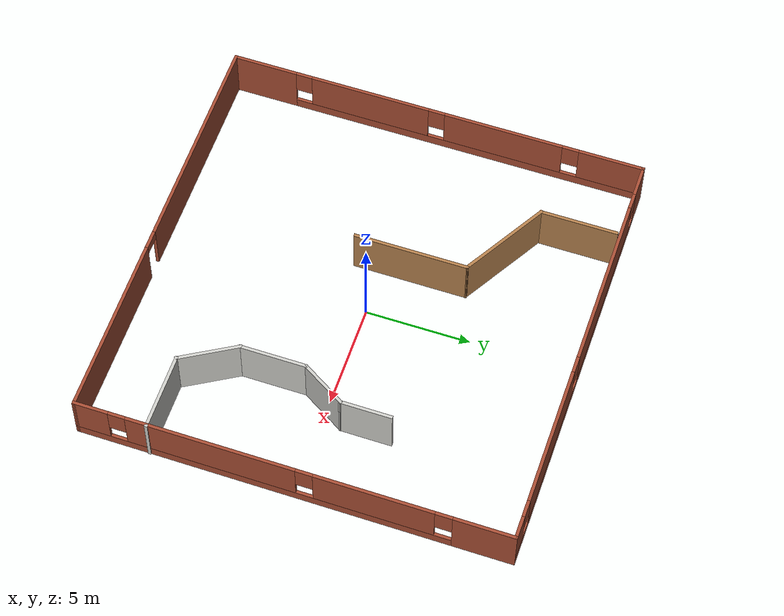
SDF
<?xml version='1.0'?>
<sdf version='1.7'>
  <model name='rtab_enclosure'>
    <pose>-0.044574 0.013919 0 0 -0 0</pose>
    <link name='Wall_0'>
      <pose>-0.018426 10.1201 0 0 -0 0</pose>
      <visual name='Wall_0_Visual_0'>
        <pose>-9.33159 0 1.25 0 -0 0</pose>
        <geometry>
          <box>
            <size>1.58683 0.15 2.5</size>
          </box>
        </geometry>
        <material>
          <script>
            <uri>file://media/materials/scripts/gazebo.material</uri>
            <name>Gazebo/Bricks</name>
          </script>
          <ambient>1 1 1 1</ambient>
        </material>
        <meta>
          <layer>0</layer>
        </meta>
      </visual>
      <collision name='Wall_0_Collision_0'>
        <geometry>
          <box>
            <size>1.58683 0.15 2.5</size>
          </box>
        </geometry>
        <pose>-9.33159 0 1.25 0 -0 0</pose>
      </collision>
      <visual name='Wall_0_Visual_1'>
        <pose>0.793415 0 0.25 0 -0 0</pose>
        <geometry>
          <box>
            <size>18.6632 0.15 0.5</size>
          </box>
        </geometry>
        <material>
          <script>
            <uri>file://media/materials/scripts/gazebo.material</uri>
            <name>Gazebo/Bricks</name>
          </script>
          <ambient>1 1 1 1</ambient>
        </material>
        <meta>
          <layer>0</layer>
        </meta>
      </visual>
      <collision name='Wall_0_Collision_1'>
        <geometry>
          <box>
            <size>18.6632 0.15 0.5</size>
          </box>
        </geometry>
        <pose>0.793415 0 0.25 0 -0 0</pose>
      </collision>
      <visual name='Wall_0_Visual_2'>
        <pose>-3.53097 0 1.5 0 -0 0</pose>
        <geometry>
          <box>
            <size>8.41439 0.15 2</size>
          </box>
        </geometry>
        <material>
          <script>
            <uri>file://media/materials/scripts/gazebo.material</uri>
            <name>Gazebo/Bricks</name>
          </script>
          <ambient>1 1 1 1</ambient>
        </material>
        <meta>
          <layer>0</layer>
        </meta>
      </visual>
      <collision name='Wall_0_Collision_2'>
        <geometry>
          <box>
            <size>8.41439 0.15 2</size>
          </box>
        </geometry>
        <pose>-3.53097 0 1.5 0 -0 0</pose>
      </collision>
      <visual name='Wall_0_Visual_3'>
        <pose>4.83505 0 1.5 0 -0 0</pose>
        <geometry>
          <box>
            <size>6.71766 0.15 2</size>
          </box>
        </geometry>
        <material>
          <script>
            <uri>file://media/materials/scripts/gazebo.material</uri>
            <name>Gazebo/Bricks</name>
          </script>
          <ambient>1 1 1 1</ambient>
        </material>
        <meta>
          <layer>0</layer>
        </meta>
      </visual>
      <collision name='Wall_0_Collision_3'>
        <geometry>
          <box>
            <size>6.71766 0.15 2</size>
          </box>
        </geometry>
        <pose>4.83505 0 1.5 0 -0 0</pose>
      </collision>
      <visual name='Wall_0_Visual_4'>
        <pose>9.55944 0 1.5 0 -0 0</pose>
        <geometry>
          <box>
            <size>1.13112 0.15 2</size>
          </box>
        </geometry>
        <material>
          <script>
            <uri>file://media/materials/scripts/gazebo.material</uri>
            <name>Gazebo/Bricks</name>
          </script>
          <ambient>1 1 1 1</ambient>
        </material>
        <meta>
          <layer>0</layer>
        </meta>
      </visual>
      <collision name='Wall_0_Collision_4'>
        <geometry>
          <box>
            <size>1.13112 0.15 2</size>
          </box>
        </geometry>
        <pose>9.55944 0 1.5 0 -0 0</pose>
      </collision>
      <visual name='Wall_0_Visual_5'>
        <pose>-8.13817 0 1.9 0 -0 0</pose>
        <geometry>
          <box>
            <size>0.8 0.15 1.2</size>
          </box>
        </geometry>
        <material>
          <script>
            <uri>file://media/materials/scripts/gazebo.material</uri>
            <name>Gazebo/Bricks</name>
          </script>
          <ambient>1 1 1 1</ambient>
        </material>
        <meta>
          <layer>0</layer>
        </meta>
      </visual>
      <collision name='Wall_0_Collision_5'>
        <geometry>
          <box>
            <size>0.8 0.15 1.2</size>
          </box>
        </geometry>
        <pose>-8.13817 0 1.9 0 -0 0</pose>
      </collision>
      <visual name='Wall_0_Visual_6'>
        <pose>1.07622 0 1.9 0 -0 0</pose>
        <geometry>
          <box>
            <size>0.8 0.15 1.2</size>
          </box>
        </geometry>
        <material>
          <script>
            <uri>file://media/materials/scripts/gazebo.material</uri>
            <name>Gazebo/Bricks</name>
          </script>
          <ambient>1 1 1 1</ambient>
        </material>
        <meta>
          <layer>0</layer>
        </meta>
      </visual>
      <collision name='Wall_0_Collision_6'>
        <geometry>
          <box>
            <size>0.8 0.15 1.2</size>
          </box>
        </geometry>
        <pose>1.07622 0 1.9 0 -0 0</pose>
      </collision>
      <visual name='Wall_0_Visual_7'>
        <pose>8.59388 0 1.9 0 -0 0</pose>
        <geometry>
          <box>
            <size>0.8 0.15 1.2</size>
          </box>
        </geometry>
        <material>
          <script>
            <uri>file://media/materials/scripts/gazebo.material</uri>
            <name>Gazebo/Bricks</name>
          </script>
          <ambient>1 1 1 1</ambient>
        </material>
        <meta>
          <layer>0</layer>
        </meta>
      </visual>
      <collision name='Wall_0_Collision_7'>
        <geometry>
          <box>
            <size>0.8 0.15 1.2</size>
          </box>
        </geometry>
        <pose>8.59388 0 1.9 0 -0 0</pose>
      </collision>
    </link>
    <link name='Wall_10'>
      <collision name='Wall_10_Collision'>
        <geometry>
          <box>
            <size>3.75 0.15 2.5</size>
          </box>
        </geometry>
        <pose>0 0 1.25 0 -0 0</pose>
      </collision>
      <visual name='Wall_10_Visual'>
        <pose>0 0 1.25 0 -0 0</pose>
        <geometry>
          <box>
            <size>3.75 0.15 2.5</size>
          </box>
        </geometry>
        <material>
          <script>
            <uri>file://media/materials/scripts/gazebo.material</uri>
            <name>Gazebo/CeilingTiled</name>
          </script>
          <ambient>1 1 1 1</ambient>
        </material>
        <meta>
          <layer>0</layer>
        </meta>
      </visual>
      <pose>8.26857 -6.70092 0 0 -0 3.14159</pose>
    </link>
    <link name='Wall_11'>
      <collision name='Wall_11_Collision'>
        <geometry>
          <box>
            <size>3.02671 0.15 2.5</size>
          </box>
        </geometry>
        <pose>0 0 1.25 0 -0 0</pose>
      </collision>
      <visual name='Wall_11_Visual'>
        <pose>0 0 1.25 0 -0 0</pose>
        <geometry>
          <box>
            <size>3.02671 0.15 2.5</size>
          </box>
        </geometry>
        <material>
          <script>
            <uri>file://media/materials/scripts/gazebo.material</uri>
            <name>Gazebo/CeilingTiled</name>
          </script>
          <ambient>1 1 1 1</ambient>
        </material>
        <meta>
          <layer>0</layer>
        </meta>
      </visual>
      <pose>5.72957 -5.46692 0 0 -0 2.11038</pose>
    </link>
    <link name='Wall_12'>
      <collision name='Wall_12_Collision'>
        <geometry>
          <box>
            <size>3.25 0.15 2.5</size>
          </box>
        </geometry>
        <pose>0 0 1.25 0 -0 0</pose>
      </collision>
      <visual name='Wall_12_Visual'>
        <pose>0 0 1.25 0 -0 0</pose>
        <geometry>
          <box>
            <size>3.25 0.15 2.5</size>
          </box>
        </geometry>
        <material>
          <script>
            <uri>file://media/materials/scripts/gazebo.material</uri>
            <name>Gazebo/CeilingTiled</name>
          </script>
          <ambient>1 1 1 1</ambient>
        </material>
        <meta>
          <layer>0</layer>
        </meta>
      </visual>
      <pose>4.99007 -2.68292 0 0 -0 1.57112</pose>
    </link>
    <link name='Wall_13'>
      <collision name='Wall_13_Collision'>
        <geometry>
          <box>
            <size>2.52818 0.15 2.5</size>
          </box>
        </geometry>
        <pose>0 0 1.25 0 -0 0</pose>
      </collision>
      <visual name='Wall_13_Visual'>
        <pose>0 0 1.25 0 -0 0</pose>
        <geometry>
          <box>
            <size>2.52818 0.15 2.5</size>
          </box>
        </geometry>
        <material>
          <script>
            <uri>file://media/materials/scripts/gazebo.material</uri>
            <name>Gazebo/CeilingTiled</name>
          </script>
          <ambient>1 1 1 1</ambient>
        </material>
        <meta>
          <layer>0</layer>
        </meta>
      </visual>
      <pose>5.60407 -0.114919 0 0 -0 1.02771</pose>
    </link>
    <link name='Wall_14'>
      <collision name='Wall_14_Collision'>
        <geometry>
          <box>
            <size>2.5 0.15 2.5</size>
          </box>
        </geometry>
        <pose>0 0 1.25 0 -0 0</pose>
      </collision>
      <visual name='Wall_14_Visual'>
        <pose>0 0 1.25 0 -0 0</pose>
        <geometry>
          <box>
            <size>2.5 0.15 2.5</size>
          </box>
        </geometry>
        <material>
          <script>
            <uri>file://media/materials/scripts/gazebo.material</uri>
            <name>Gazebo/CeilingTiled</name>
          </script>
          <ambient>1 1 1 1</ambient>
        </material>
        <meta>
          <layer>0</layer>
        </meta>
      </visual>
      <pose>6.21857 2.07808 0 0 -0 1.5708</pose>
    </link>
    <link name='Wall_2'>
      <pose>10.0316 8.1e-05 0 0 -0 -1.5708</pose>
      <visual name='Wall_2_Visual_0'>
        <pose>-8.75484 0 1.25 0 -0 0</pose>
        <geometry>
          <box>
            <size>2.87991 0.15 2.5</size>
          </box>
        </geometry>
        <material>
          <script>
            <uri>file://media/materials/scripts/gazebo.material</uri>
            <name>Gazebo/Bricks</name>
          </script>
          <ambient>1 1 1 1</ambient>
        </material>
        <meta>
          <layer>0</layer>
        </meta>
      </visual>
      <collision name='Wall_2_Collision_0'>
        <geometry>
          <box>
            <size>2.87991 0.15 2.5</size>
          </box>
        </geometry>
        <pose>-8.75484 0 1.25 0 -0 0</pose>
      </collision>
      <visual name='Wall_2_Visual_1'>
        <pose>1.43996 0 0.25 0 -0 0</pose>
        <geometry>
          <box>
            <size>17.5097 0.15 0.5</size>
          </box>
        </geometry>
        <material>
          <script>
            <uri>file://media/materials/scripts/gazebo.material</uri>
            <name>Gazebo/Bricks</name>
          </script>
          <ambient>1 1 1 1</ambient>
        </material>
        <meta>
          <layer>0</layer>
        </meta>
      </visual>
      <collision name='Wall_2_Collision_1'>
        <geometry>
          <box>
            <size>17.5097 0.15 0.5</size>
          </box>
        </geometry>
        <pose>1.43996 0 0.25 0 -0 0</pose>
      </collision>
      <visual name='Wall_2_Visual_2'>
        <pose>-3.74599 0 1.5 0 -0 0</pose>
        <geometry>
          <box>
            <size>5.53779 0.15 2</size>
          </box>
        </geometry>
        <material>
          <script>
            <uri>file://media/materials/scripts/gazebo.material</uri>
            <name>Gazebo/Bricks</name>
          </script>
          <ambient>1 1 1 1</ambient>
        </material>
        <meta>
          <layer>0</layer>
        </meta>
      </visual>
      <collision name='Wall_2_Collision_2'>
        <geometry>
          <box>
            <size>5.53779 0.15 2</size>
          </box>
        </geometry>
        <pose>-3.74599 0 1.5 0 -0 0</pose>
      </collision>
      <visual name='Wall_2_Visual_3'>
        <pose>3.77146 0 1.5 0 -0 0</pose>
        <geometry>
          <box>
            <size>7.89711 0.15 2</size>
          </box>
        </geometry>
        <material>
          <script>
            <uri>file://media/materials/scripts/gazebo.material</uri>
            <name>Gazebo/Bricks</name>
          </script>
          <ambient>1 1 1 1</ambient>
        </material>
        <meta>
          <layer>0</layer>
        </meta>
      </visual>
      <collision name='Wall_2_Collision_3'>
        <geometry>
          <box>
            <size>7.89711 0.15 2</size>
          </box>
        </geometry>
        <pose>3.77146 0 1.5 0 -0 0</pose>
      </collision>
      <visual name='Wall_2_Visual_4'>
        <pose>9.3574 0 1.5 0 -0 0</pose>
        <geometry>
          <box>
            <size>1.67479 0.15 2</size>
          </box>
        </geometry>
        <material>
          <script>
            <uri>file://media/materials/scripts/gazebo.material</uri>
            <name>Gazebo/Bricks</name>
          </script>
          <ambient>1 1 1 1</ambient>
        </material>
        <meta>
          <layer>0</layer>
        </meta>
      </visual>
      <collision name='Wall_2_Collision_4'>
        <geometry>
          <box>
            <size>1.67479 0.15 2</size>
          </box>
        </geometry>
        <pose>9.3574 0 1.5 0 -0 0</pose>
      </collision>
      <visual name='Wall_2_Visual_5'>
        <pose>-6.91488 0 1.9 0 -0 0</pose>
        <geometry>
          <box>
            <size>0.8 0.15 1.2</size>
          </box>
        </geometry>
        <material>
          <script>
            <uri>file://media/materials/scripts/gazebo.material</uri>
            <name>Gazebo/Bricks</name>
          </script>
          <ambient>1 1 1 1</ambient>
        </material>
        <meta>
          <layer>0</layer>
        </meta>
      </visual>
      <collision name='Wall_2_Collision_5'>
        <geometry>
          <box>
            <size>0.8 0.15 1.2</size>
          </box>
        </geometry>
        <pose>-6.91488 0 1.9 0 -0 0</pose>
      </collision>
      <visual name='Wall_2_Visual_6'>
        <pose>-0.577099 0 1.9 0 -0 0</pose>
        <geometry>
          <box>
            <size>0.8 0.15 1.2</size>
          </box>
        </geometry>
        <material>
          <script>
            <uri>file://media/materials/scripts/gazebo.material</uri>
            <name>Gazebo/Bricks</name>
          </script>
          <ambient>1 1 1 1</ambient>
        </material>
        <meta>
          <layer>0</layer>
        </meta>
      </visual>
      <collision name='Wall_2_Collision_6'>
        <geometry>
          <box>
            <size>0.8 0.15 1.2</size>
          </box>
        </geometry>
        <pose>-0.577099 0 1.9 0 -0 0</pose>
      </collision>
      <visual name='Wall_2_Visual_7'>
        <pose>8.12001 0 1.9 0 -0 0</pose>
        <geometry>
          <box>
            <size>0.8 0.15 1.2</size>
          </box>
        </geometry>
        <material>
          <script>
            <uri>file://media/materials/scripts/gazebo.material</uri>
            <name>Gazebo/Bricks</name>
          </script>
          <ambient>1 1 1 1</ambient>
        </material>
        <meta>
          <layer>0</layer>
        </meta>
      </visual>
      <collision name='Wall_2_Collision_7'>
        <geometry>
          <box>
            <size>0.8 0.15 1.2</size>
          </box>
        </geometry>
        <pose>8.12001 0 1.9 0 -0 0</pose>
      </collision>
    </link>
    <link name='Wall_3'>
      <pose>-0.018426 -10.0964 0 0 -0 3.13925</pose>
      <visual name='Wall_3_Visual_0'>
        <pose>-5.80454 0 1.25 0 -0 0</pose>
        <geometry>
          <box>
            <size>8.64092 0.15 2.5</size>
          </box>
        </geometry>
        <material>
          <script>
            <uri>file://media/materials/scripts/gazebo.material</uri>
            <name>Gazebo/Bricks</name>
          </script>
          <ambient>1 1 1 1</ambient>
        </material>
        <meta>
          <layer>0</layer>
        </meta>
      </visual>
      <collision name='Wall_3_Collision_0'>
        <geometry>
          <box>
            <size>8.64092 0.15 2.5</size>
          </box>
        </geometry>
        <pose>-5.80454 0 1.25 0 -0 0</pose>
      </collision>
      <visual name='Wall_3_Visual_1'>
        <pose>4.77046 0 1.25 0 -0 0</pose>
        <geometry>
          <box>
            <size>10.7091 0.15 2.5</size>
          </box>
        </geometry>
        <material>
          <script>
            <uri>file://media/materials/scripts/gazebo.material</uri>
            <name>Gazebo/Bricks</name>
          </script>
          <ambient>1 1 1 1</ambient>
        </material>
        <meta>
          <layer>0</layer>
        </meta>
      </visual>
      <collision name='Wall_3_Collision_1'>
        <geometry>
          <box>
            <size>10.7091 0.15 2.5</size>
          </box>
        </geometry>
        <pose>4.77046 0 1.25 0 -0 0</pose>
      </collision>
      <visual name='Wall_3_Visual_2'>
        <pose>-1.03408 0 2.25 0 -0 0</pose>
        <geometry>
          <box>
            <size>0.9 0.15 0.5</size>
          </box>
        </geometry>
        <material>
          <script>
            <uri>file://media/materials/scripts/gazebo.material</uri>
            <name>Gazebo/Bricks</name>
          </script>
          <ambient>1 1 1 1</ambient>
        </material>
        <meta>
          <layer>0</layer>
        </meta>
      </visual>
      <collision name='Wall_3_Collision_2'>
        <geometry>
          <box>
            <size>0.9 0.15 0.5</size>
          </box>
        </geometry>
        <pose>-1.03408 0 2.25 0 -0 0</pose>
      </collision>
    </link>
    <link name='Wall_4'>
      <pose>-10.0684 0.023581 0 0 -0 1.5708</pose>
      <visual name='Wall_4_Visual_0'>
        <pose>-8.59435 0 1.25 0 -0 0</pose>
        <geometry>
          <box>
            <size>3.15432 0.15 2.5</size>
          </box>
        </geometry>
        <material>
          <script>
            <uri>file://media/materials/scripts/gazebo.material</uri>
            <name>Gazebo/Bricks</name>
          </script>
          <ambient>1 1 1 1</ambient>
        </material>
        <meta>
          <layer>0</layer>
        </meta>
      </visual>
      <collision name='Wall_4_Collision_0'>
        <geometry>
          <box>
            <size>3.15432 0.15 2.5</size>
          </box>
        </geometry>
        <pose>-8.59435 0 1.25 0 -0 0</pose>
      </collision>
      <visual name='Wall_4_Visual_1'>
        <pose>1.57716 0 0.25 0 -0 0</pose>
        <geometry>
          <box>
            <size>17.1887 0.15 0.5</size>
          </box>
        </geometry>
        <material>
          <script>
            <uri>file://media/materials/scripts/gazebo.material</uri>
            <name>Gazebo/Bricks</name>
          </script>
          <ambient>1 1 1 1</ambient>
        </material>
        <meta>
          <layer>0</layer>
        </meta>
      </visual>
      <collision name='Wall_4_Collision_1'>
        <geometry>
          <box>
            <size>17.1887 0.15 0.5</size>
          </box>
        </geometry>
        <pose>1.57716 0 0.25 0 -0 0</pose>
      </collision>
      <visual name='Wall_4_Visual_2'>
        <pose>-3.30004 0 1.5 0 -0 0</pose>
        <geometry>
          <box>
            <size>5.83431 0.15 2</size>
          </box>
        </geometry>
        <material>
          <script>
            <uri>file://media/materials/scripts/gazebo.material</uri>
            <name>Gazebo/Bricks</name>
          </script>
          <ambient>1 1 1 1</ambient>
        </material>
        <meta>
          <layer>0</layer>
        </meta>
      </visual>
      <collision name='Wall_4_Collision_2'>
        <geometry>
          <box>
            <size>5.83431 0.15 2</size>
          </box>
        </geometry>
        <pose>-3.30004 0 1.5 0 -0 0</pose>
      </collision>
      <visual name='Wall_4_Visual_3'>
        <pose>3.30752 0 1.5 0 -0 0</pose>
        <geometry>
          <box>
            <size>5.78081 0.15 2</size>
          </box>
        </geometry>
        <material>
          <script>
            <uri>file://media/materials/scripts/gazebo.material</uri>
            <name>Gazebo/Bricks</name>
          </script>
          <ambient>1 1 1 1</ambient>
        </material>
        <meta>
          <layer>0</layer>
        </meta>
      </visual>
      <collision name='Wall_4_Collision_3'>
        <geometry>
          <box>
            <size>5.78081 0.15 2</size>
          </box>
        </geometry>
        <pose>3.30752 0 1.5 0 -0 0</pose>
      </collision>
      <visual name='Wall_4_Visual_4'>
        <pose>8.58472 0 1.5 0 -0 0</pose>
        <geometry>
          <box>
            <size>3.17359 0.15 2</size>
          </box>
        </geometry>
        <material>
          <script>
            <uri>file://media/materials/scripts/gazebo.material</uri>
            <name>Gazebo/Bricks</name>
          </script>
          <ambient>1 1 1 1</ambient>
        </material>
        <meta>
          <layer>0</layer>
        </meta>
      </visual>
      <collision name='Wall_4_Collision_4'>
        <geometry>
          <box>
            <size>3.17359 0.15 2</size>
          </box>
        </geometry>
        <pose>8.58472 0 1.5 0 -0 0</pose>
      </collision>
      <visual name='Wall_4_Visual_5'>
        <pose>-6.61719 0 1.9 0 -0 0</pose>
        <geometry>
          <box>
            <size>0.8 0.15 1.2</size>
          </box>
        </geometry>
        <material>
          <script>
            <uri>file://media/materials/scripts/gazebo.material</uri>
            <name>Gazebo/Bricks</name>
          </script>
          <ambient>1 1 1 1</ambient>
        </material>
        <meta>
          <layer>0</layer>
        </meta>
      </visual>
      <collision name='Wall_4_Collision_5'>
        <geometry>
          <box>
            <size>0.8 0.15 1.2</size>
          </box>
        </geometry>
        <pose>-6.61719 0 1.9 0 -0 0</pose>
      </collision>
      <visual name='Wall_4_Visual_6'>
        <pose>0.017117 0 1.9 0 -0 0</pose>
        <geometry>
          <box>
            <size>0.8 0.15 1.2</size>
          </box>
        </geometry>
        <material>
          <script>
            <uri>file://media/materials/scripts/gazebo.material</uri>
            <name>Gazebo/Bricks</name>
          </script>
          <ambient>1 1 1 1</ambient>
        </material>
        <meta>
          <layer>0</layer>
        </meta>
      </visual>
      <collision name='Wall_4_Collision_6'>
        <geometry>
          <box>
            <size>0.8 0.15 1.2</size>
          </box>
        </geometry>
        <pose>0.017117 0 1.9 0 -0 0</pose>
      </collision>
      <visual name='Wall_4_Visual_7'>
        <pose>6.59793 0 1.9 0 -0 0</pose>
        <geometry>
          <box>
            <size>0.8 0.15 1.2</size>
          </box>
        </geometry>
        <material>
          <script>
            <uri>file://media/materials/scripts/gazebo.material</uri>
            <name>Gazebo/Bricks</name>
          </script>
          <ambient>1 1 1 1</ambient>
        </material>
        <meta>
          <layer>0</layer>
        </meta>
      </visual>
      <collision name='Wall_4_Collision_7'>
        <geometry>
          <box>
            <size>0.8 0.15 1.2</size>
          </box>
        </geometry>
        <pose>6.59793 0 1.9 0 -0 0</pose>
      </collision>
    </link>
    <link name='Wall_6'>
      <collision name='Wall_6_Collision'>
        <geometry>
          <box>
            <size>3.75 0.15 2.5</size>
          </box>
        </geometry>
        <pose>0 0 1.25 0 -0 0</pose>
      </collision>
      <visual name='Wall_6_Visual'>
        <pose>0 0 1.25 0 -0 0</pose>
        <geometry>
          <box>
            <size>3.75 0.15 2.5</size>
          </box>
        </geometry>
        <material>
          <script>
            <uri>file://media/materials/scripts/gazebo.material</uri>
            <name>Gazebo/Wood</name>
          </script>
          <ambient>1 1 1 1</ambient>
        </material>
        <meta>
          <layer>0</layer>
        </meta>
      </visual>
      <pose>-6.23143 8.13108 0 0 -0 -1.5708</pose>
    </link>
    <link name='Wall_7'>
      <collision name='Wall_7_Collision'>
        <geometry>
          <box>
            <size>4.75 0.15 2.5</size>
          </box>
        </geometry>
        <pose>0 0 1.25 0 -0 0</pose>
      </collision>
      <visual name='Wall_7_Visual'>
        <pose>0 0 1.25 0 -0 0</pose>
        <geometry>
          <box>
            <size>4.75 0.15 2.5</size>
          </box>
        </geometry>
        <material>
          <script>
            <uri>file://media/materials/scripts/gazebo.material</uri>
            <name>Gazebo/Wood</name>
          </script>
          <ambient>1 1 1 1</ambient>
        </material>
        <meta>
          <layer>0</layer>
        </meta>
      </visual>
      <pose>-4.23943 5.18108 0 0 -0 -0.523568</pose>
    </link>
    <link name='Wall_8'>
      <collision name='Wall_8_Collision'>
        <geometry>
          <box>
            <size>5.5 0.15 2.5</size>
          </box>
        </geometry>
        <pose>0 0 1.25 0 -0 0</pose>
      </collision>
      <visual name='Wall_8_Visual'>
        <pose>0 0 1.25 0 -0 0</pose>
        <geometry>
          <box>
            <size>5.5 0.15 2.5</size>
          </box>
        </geometry>
        <material>
          <script>
            <uri>file://media/materials/scripts/gazebo.material</uri>
            <name>Gazebo/Wood</name>
          </script>
          <ambient>1 1 1 1</ambient>
        </material>
        <meta>
          <layer>0</layer>
        </meta>
      </visual>
      <pose>-2.24743 1.35608 0 0 -0 -1.5708</pose>
    </link>
    <static>1</static>
  </model>
</sdf>
